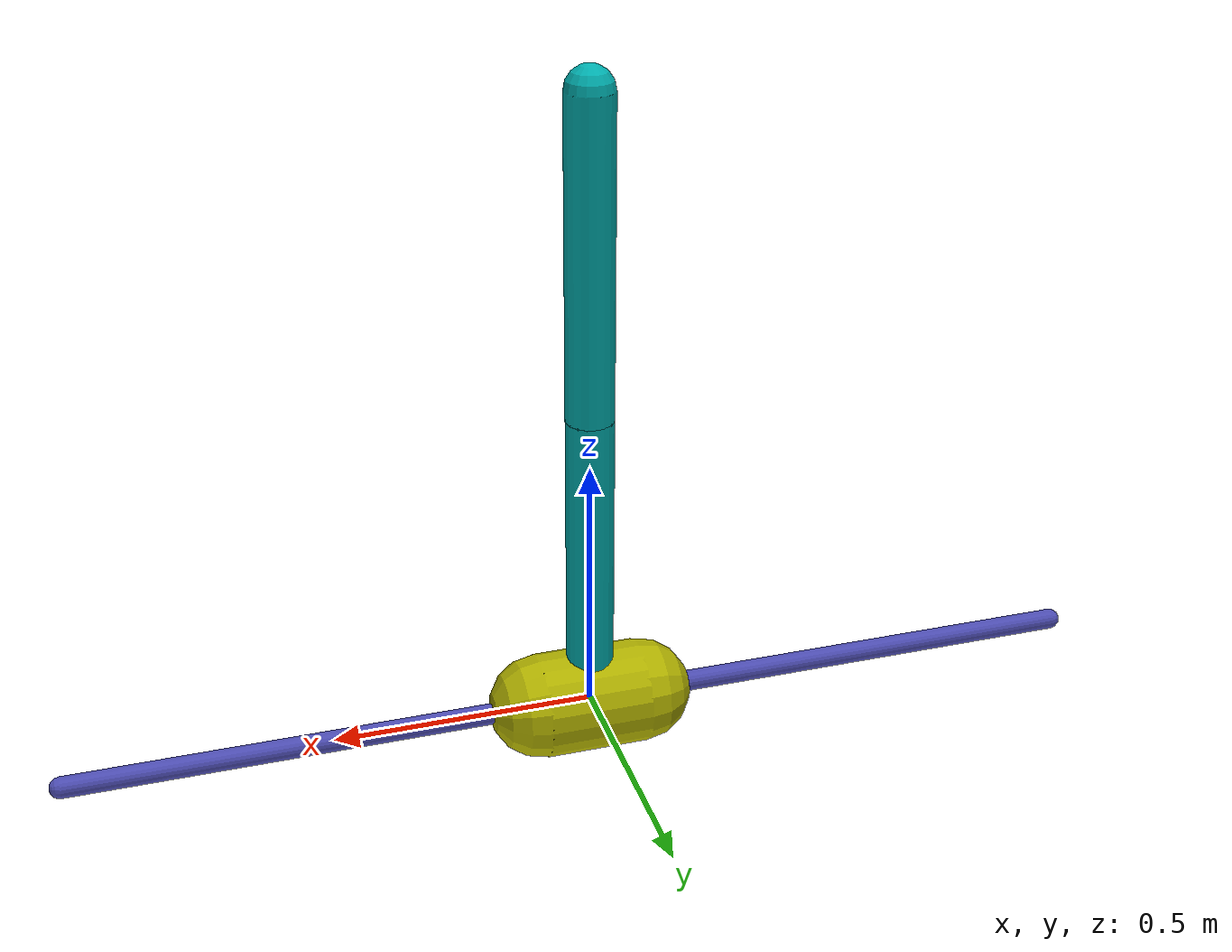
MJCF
<mujoco model="cartpole">
  <compiler coordinate="local" inertiafromgeom="true"/>
  <custom>
    <numeric data="2" name="frame_skip"/>
  </custom>
  <default>
    <joint damping="0.05"/>
    <geom contype="0" friction="1 0.1 0.1" rgba="0.7 0.7 0 1"/>
  </default>
  <option gravity="1e-5 0 -9.81" integrator="RK4" timestep="0.01"/>
  <size nstack="3000"/>
  <worldbody>
    <geom name="floor" pos="0 0 -3.0" rgba="0.8 0.9 0.8 1" size="40 40 40" type="plane"/>
    <geom name="rail" pos="0 0 0" quat="0.707 0 0.707 0" rgba="0.3 0.3 0.7 1" size="0.02 1" type="capsule"/>
    <body name="cart" pos="0 0 0">
      <joint axis="1 0 0" limited="true" margin="0.01" name="slider" pos="0 0 0" range="-1 1" type="slide"/>
      <geom name="cart" pos="0 0 0" quat="0.707 0 0.707 0" size="0.1 0.1" type="capsule"/>
      <velocity>
        <linear x="10.0" y="10.0" z="10.0" xmin="-20.0" xmax="20.0" ymin="-20.0" ymax="20.0" zmin="-20.0" zmax="20.0"/>
        <angular x="0" y="0" z="0" xmin="-20.0" xmax="20.0" ymin="-20.0" ymax="20.0" zmin="-20.0" zmax="20.0"/>
      </velocity>
      <body name="pole" pos="0 0 0">
        <joint axis="0 1 0" name="hinge" pos="0 0 0" type="hinge"/>
        <geom fromto="0 0 0 0 0 0.6" name="cpole" rgba="0 0.7 0.7 1" size="0.045 0.3" type="capsule"/>
        <velocity>
          <linear x="0.0" y="0.0" z="0.0" xmin="-20.0" xmax="20.0" ymin="-20.0" ymax="20.0" zmin="-20.0" zmax="20.0"/>
          <angular x="0" y="0" z="0" xmin="-20.0" xmax="20.0" ymin="-20.0" ymax="20.0" zmin="-20.0" zmax="20.0"/>
        </velocity>
        <body name="pole2" pos="0 0 0.6">
          <joint axis="0 1 0" name="hinge2" pos="0 0 0" type="hinge"/>
          <geom fromto="0 0 0 0 0 0.6" name="cpole2" rgba="0 0.7 0.7 1" size="0.045 0.3" type="capsule"/>
          <velocity>
            <linear x="0.0" y="0.0" z="0.0" xmin="-20.0" xmax="20.0" ymin="-20.0" ymax="20.0" zmin="-20.0" zmax="20.0"/>
            <angular x="0" y="0" z="0" xmin="-20.0" xmax="20.0" ymin="-20.0" ymax="20.0" zmin="-20.0" zmax="20.0"/>
          </velocity>
          <!--site name="tip" pos="0 0 .6" size="0.01 0.01"/-->
        </body>
      </body>
    </body>
  </worldbody>
  <actuator>
    <motor ctrllimited="true" ctrlrange="-1 1" gear="500" joint="slider" name="slide"/>
  </actuator>
</mujoco>
